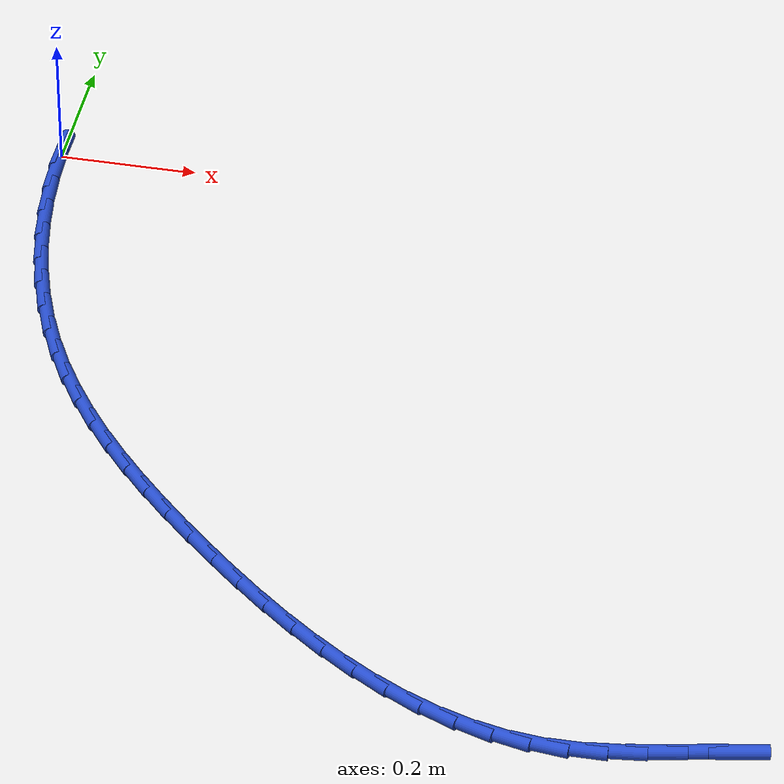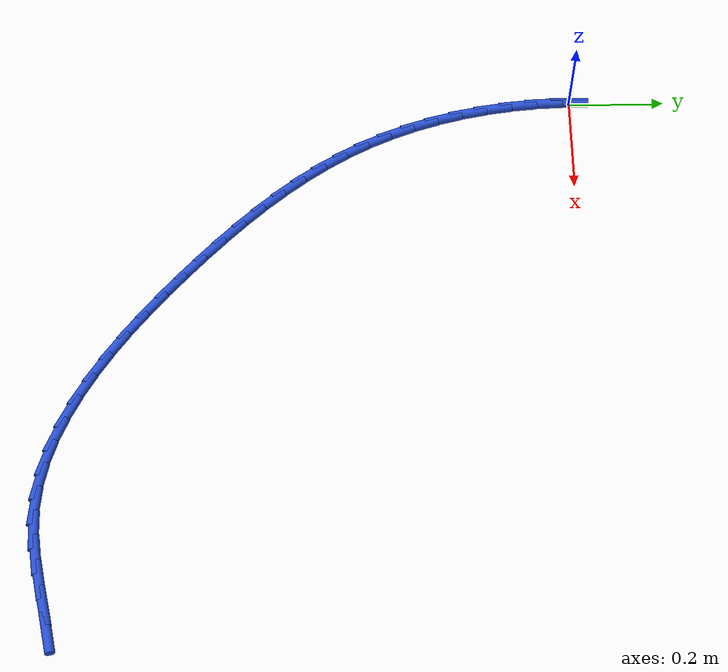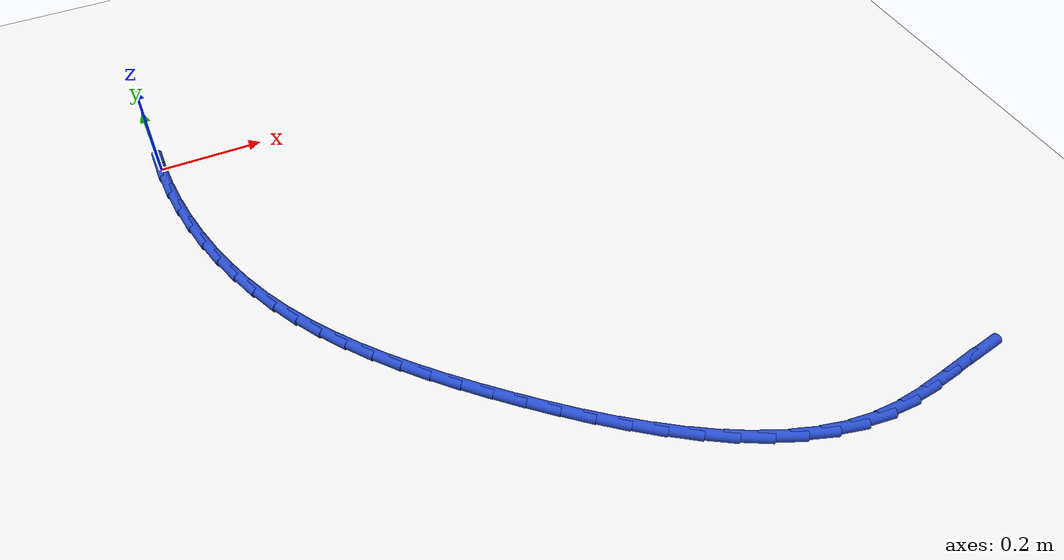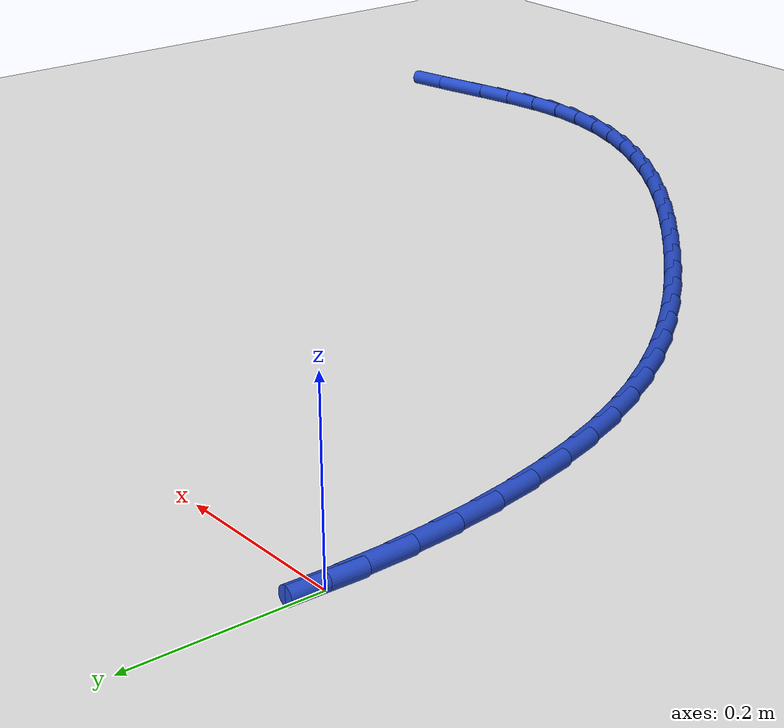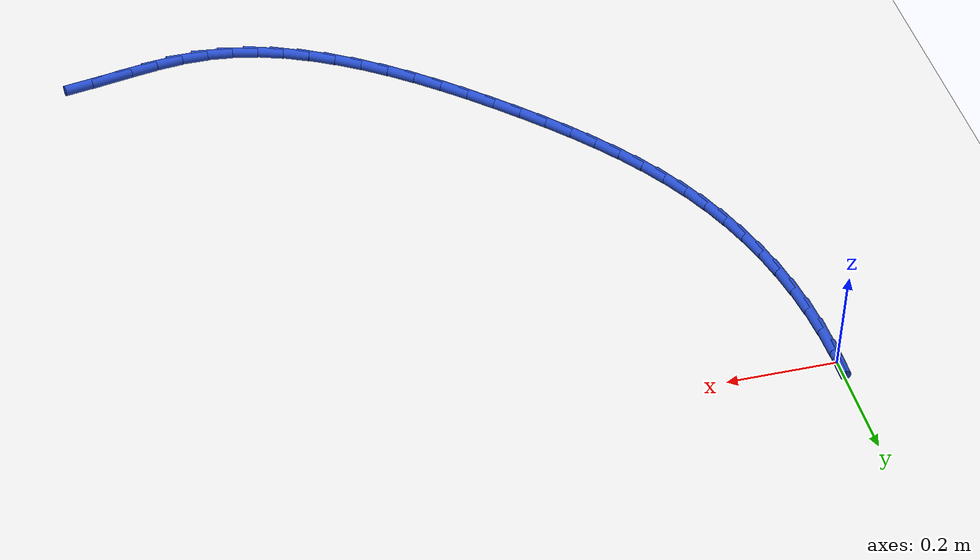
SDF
<sdf version="1.6">
 <world name="default">
  <model name="ground_plane">
   <static>1</static>
   <link name="link">
    <collision name="collision">
     <geometry><plane><normal>0 0 1</normal><size>100 100</size></plane></geometry>
     <surface><friction><ode><mu>100</mu><mu2>50</mu2></ode></friction></surface>
    </collision>
    <visual name="visual">
     <cast_shadows>0</cast_shadows>
     <geometry><plane><normal>0 0 1</normal><size>100 100</size></plane></geometry>
     <material>
      <script><uri>file://media/materials/scripts/gazebo.material</uri><name>Gazebo/WhiteGlow</name></script>
     </material>
    </visual>
   </link>
  </model>
  <model name="line">
   <link name="link_0">
    <pose>2.42861286636753e-17 1.5265566588595902e-16 0.01 0 1.57 1.5557548040835374</pose>
    <collision name="collision">
     <geometry><cylinder><radius>0.01</radius><length>0.08</length></cylinder></geometry>
    </collision>
    <visual name="visual">
     <material>
      <script><name>Gazebo/Blue</name><uri>file://media/materials/scripts/gazebo.material</uri></script>
     </material>
     <geometry><cylinder><radius>0.01</radius><length>0.08</length></cylinder></geometry>
    </visual>
   </link>
   <link name="link_107">
    <pose>1.1538798904895493 -1.0425496384109363 0.01 0 1.57 0.19039783025946605</pose>
    <collision name="collision">
     <geometry><cylinder><radius>0.01</radius><length>0.08</length></cylinder></geometry>
    </collision>
    <visual name="visual">
     <material>
      <script><name>Gazebo/Blue</name><uri>file://media/materials/scripts/gazebo.material</uri></script>
     </material>
     <geometry><cylinder><radius>0.01</radius><length>0.08</length></cylinder></geometry>
    </visual>
   </link>
   <link name="link_108">
    <pose>1.1011911335605913 -1.052704469720251 0.01 0 1.57 0.2043302206934685</pose>
    <collision name="collision">
     <geometry><cylinder><radius>0.01</radius><length>0.08</length></cylinder></geometry>
    </collision>
    <visual name="visual">
     <material>
      <script><name>Gazebo/Blue</name><uri>file://media/materials/scripts/gazebo.material</uri></script>
     </material>
     <geometry><cylinder><radius>0.01</radius><length>0.08</length></cylinder></geometry>
    </visual>
   </link>
   <link name="link_109">
    <pose>1.0497170974686552 -1.0633710316782838 0.01 0 1.57 0.1808869468744371</pose>
    <collision name="collision">
     <geometry><cylinder><radius>0.01</radius><length>0.08</length></cylinder></geometry>
    </collision>
    <visual name="visual">
     <material>
      <script><name>Gazebo/Blue</name><uri>file://media/materials/scripts/gazebo.material</uri></script>
     </material>
     <geometry><cylinder><radius>0.01</radius><length>0.08</length></cylinder></geometry>
    </visual>
   </link>
   <link name="link_110">
    <pose>0.999150323412599 -1.0726189863876652 0.01 0 1.57 0.11751423238117457</pose>
    <collision name="collision">
     <geometry><cylinder><radius>0.01</radius><length>0.08</length></cylinder></geometry>
    </collision>
    <visual name="visual">
     <material>
      <script><name>Gazebo/Blue</name><uri>file://media/materials/scripts/gazebo.material</uri></script>
     </material>
     <geometry><cylinder><radius>0.01</radius><length>0.08</length></cylinder></geometry>
    </visual>
   </link>
   <link name="link_111">
    <pose>0.9491833525912792 -1.0785179959510258 0.01 0 1.57 0.012868832274813516</pose>
    <collision name="collision">
     <geometry><cylinder><radius>0.01</radius><length>0.08</length></cylinder></geometry>
    </collision>
    <visual name="visual">
     <material>
      <script><name>Gazebo/Blue</name><uri>file://media/materials/scripts/gazebo.material</uri></script>
     </material>
     <geometry><cylinder><radius>0.01</radius><length>0.08</length></cylinder></geometry>
    </visual>
   </link>
   <link name="link_112">
    <pose>0.8995120285811607 -1.0791572431768748 0.01 0 1.57 -0.11194142066950004</pose>
    <collision name="collision">
     <geometry><cylinder><radius>0.01</radius><length>0.08</length></cylinder></geometry>
    </collision>
    <visual name="visual">
     <material>
      <script><name>Gazebo/Blue</name><uri>file://media/materials/scripts/gazebo.material</uri></script>
     </material>
     <geometry><cylinder><radius>0.01</radius><length>0.08</length></cylinder></geometry>
    </visual>
   </link>
   <link name="link_113">
    <pose>0.8499954653236678 -1.073591019396004 0.01 0 1.57 -0.226024219698549</pose>
    <collision name="collision">
     <geometry><cylinder><radius>0.01</radius><length>0.08</length></cylinder></geometry>
    </collision>
    <visual name="visual">
     <material>
      <script><name>Gazebo/Blue</name><uri>file://media/materials/scripts/gazebo.material</uri></script>
     </material>
     <geometry><cylinder><radius>0.01</radius><length>0.08</length></cylinder></geometry>
    </visual>
   </link>
   <link name="link_114">
    <pose>0.8007276035930383 -1.062261702366651 0.01 0 1.57 -0.326161695039591</pose>
    <collision name="collision">
     <geometry><cylinder><radius>0.01</radius><length>0.08</length></cylinder></geometry>
    </collision>
    <visual name="visual">
     <material>
      <script><name>Gazebo/Blue</name><uri>file://media/materials/scripts/gazebo.material</uri></script>
     </material>
     <geometry><cylinder><radius>0.01</radius><length>0.08</length></cylinder></geometry>
    </visual>
   </link>
   <link name="link_115">
    <pose>0.7518205930734316 -1.0457193046536095 0.01 0 1.57 -0.4126805203101307</pose>
    <collision name="collision">
     <geometry><cylinder><radius>0.01</radius><length>0.08</length></cylinder></geometry>
    </collision>
    <visual name="visual">
     <material>
      <script><name>Gazebo/Blue</name><uri>file://media/materials/scripts/gazebo.material</uri></script>
     </material>
     <geometry><cylinder><radius>0.01</radius><length>0.08</length></cylinder></geometry>
    </visual>
   </link>
   <link name="link_116">
    <pose>0.7033865834490076 -1.0245138388216724 0.01 0 1.57 -0.4866832821104728</pose>
    <collision name="collision">
     <geometry><cylinder><radius>0.01</radius><length>0.08</length></cylinder></geometry>
    </collision>
    <visual name="visual">
     <material>
      <script><name>Gazebo/Blue</name><uri>file://media/materials/scripts/gazebo.material</uri></script>
     </material>
     <geometry><cylinder><radius>0.01</radius><length>0.08</length></cylinder></geometry>
    </visual>
   </link>
   <link name="link_117">
    <pose>0.655537724403925 -0.9991953174356321 0.01 0 1.57 -0.5495790541301443</pose>
    <collision name="collision">
     <geometry><cylinder><radius>0.01</radius><length>0.08</length></cylinder></geometry>
    </collision>
    <visual name="visual">
     <material>
      <script><name>Gazebo/Blue</name><uri>file://media/materials/scripts/gazebo.material</uri></script>
     </material>
     <geometry><cylinder><radius>0.01</radius><length>0.08</length></cylinder></geometry>
    </visual>
   </link>
   <link name="link_118">
    <pose>0.608386165622345 -0.9703137530602822 0.01 0 1.57 -0.6027911567929287</pose>
    <collision name="collision">
     <geometry><cylinder><radius>0.01</radius><length>0.08</length></cylinder></geometry>
    </collision>
    <visual name="visual">
     <material>
      <script><name>Gazebo/Blue</name><uri>file://media/materials/scripts/gazebo.material</uri></script>
     </material>
     <geometry><cylinder><radius>0.01</radius><length>0.08</length></cylinder></geometry>
    </visual>
   </link>
   <link name="link_119">
    <pose>0.5620440567884273 -0.9384191582604163 0.01 0 1.57 -0.6476061007345547</pose>
    <collision name="collision">
     <geometry><cylinder><radius>0.01</radius><length>0.08</length></cylinder></geometry>
    </collision>
    <visual name="visual">
     <material>
      <script><name>Gazebo/Blue</name><uri>file://media/materials/scripts/gazebo.material</uri></script>
     </material>
     <geometry><cylinder><radius>0.01</radius><length>0.08</length></cylinder></geometry>
    </visual>
   </link>
   <link name="link_120">
    <pose>0.5166235475863311 -0.9040615456008265 0.01 0 1.57 -0.6851108197964323</pose>
    <collision name="collision">
     <geometry><cylinder><radius>0.01</radius><length>0.08</length></cylinder></geometry>
    </collision>
    <visual name="visual">
     <material>
      <script><name>Gazebo/Blue</name><uri>file://media/materials/scripts/gazebo.material</uri></script>
     </material>
     <geometry><cylinder><radius>0.01</radius><length>0.08</length></cylinder></geometry>
    </visual>
   </link>
   <link name="link_121">
    <pose>0.4722367877002163 -0.8677909276463065 0.01 0 1.57 -0.7161761805476167</pose>
    <collision name="collision">
     <geometry><cylinder><radius>0.01</radius><length>0.08</length></cylinder></geometry>
    </collision>
    <visual name="visual">
     <material>
      <script><name>Gazebo/Blue</name><uri>file://media/materials/scripts/gazebo.material</uri></script>
     </material>
     <geometry><cylinder><radius>0.01</radius><length>0.08</length></cylinder></geometry>
    </visual>
   </link>
   <link name="link_122">
    <pose>0.4289959268142424 -0.8301573169616486 0.01 0 1.57 -0.7414596874110615</pose>
    <collision name="collision">
     <geometry><cylinder><radius>0.01</radius><length>0.08</length></cylinder></geometry>
    </collision>
    <visual name="visual">
     <material>
      <script><name>Gazebo/Blue</name><uri>file://media/materials/scripts/gazebo.material</uri></script>
     </material>
     <geometry><cylinder><radius>0.01</radius><length>0.08</length></cylinder></geometry>
    </visual>
   </link>
   <link name="link_123">
    <pose>0.38701311461257043 -0.7917107261116473 0.01 0 1.57 -0.7621236740101198</pose>
    <collision name="collision">
     <geometry><cylinder><radius>0.01</radius><length>0.08</length></cylinder></geometry>
    </collision>
    <visual name="visual">
     <material>
      <script><name>Gazebo/Blue</name><uri>file://media/materials/scripts/gazebo.material</uri></script>
     </material>
     <geometry><cylinder><radius>0.01</radius><length>0.08</length></cylinder></geometry>
    </visual>
   </link>
   <link name="link_124">
    <pose>0.34640435809972653 -0.7529495967972397 0.01 0 1.57 -0.7847527439742054</pose>
    <collision name="collision">
     <geometry><cylinder><radius>0.01</radius><length>0.08</length></cylinder></geometry>
    </collision>
    <visual name="visual">
     <material>
      <script><name>Gazebo/Blue</name><uri>file://media/materials/scripts/gazebo.material</uri></script>
     </material>
     <geometry><cylinder><radius>0.01</radius><length>0.08</length></cylinder></geometry>
    </visual>
   </link>
   <link name="link_125">
    <pose>0.307319836989394 -0.7139154949704688 0.01 0 1.57 -0.8128559919462752</pose>
    <collision name="collision">
     <geometry><cylinder><radius>0.01</radius><length>0.08</length></cylinder></geometry>
    </collision>
    <visual name="visual">
     <material>
      <script><name>Gazebo/Blue</name><uri>file://media/materials/scripts/gazebo.material</uri></script>
     </material>
     <geometry><cylinder><radius>0.01</radius><length>0.08</length></cylinder></geometry>
    </visual>
   </link>
   <link name="link_126">
    <pose>0.2699275838011095 -0.6744113015553022 0.01 0 1.57 -0.8466340662858267</pose>
    <collision name="collision">
     <geometry><cylinder><radius>0.01</radius><length>0.08</length></cylinder></geometry>
    </collision>
    <visual name="visual">
     <material>
      <script><name>Gazebo/Blue</name><uri>file://media/materials/scripts/gazebo.material</uri></script>
     </material>
     <geometry><cylinder><radius>0.01</radius><length>0.08</length></cylinder></geometry>
    </visual>
   </link>
   <link name="link_127">
    <pose>0.23439578645802425 -0.6342378197902173 0.01 0 1.57 -0.8861863688634076</pose>
    <collision name="collision">
     <geometry><cylinder><radius>0.01</radius><length>0.08</length></cylinder></geometry>
    </collision>
    <visual name="visual">
     <material>
      <script><name>Gazebo/Blue</name><uri>file://media/materials/scripts/gazebo.material</uri></script>
     </material>
     <geometry><cylinder><radius>0.01</radius><length>0.08</length></cylinder></geometry>
    </visual>
   </link>
   <link name="link_128">
    <pose>0.20089263288328776 -0.5931958529136897 0.01 0 1.57 -0.9315018900054706</pose>
    <collision name="collision">
     <geometry><cylinder><radius>0.01</radius><length>0.08</length></cylinder></geometry>
    </collision>
    <visual name="visual">
     <material>
      <script><name>Gazebo/Blue</name><uri>file://media/materials/scripts/gazebo.material</uri></script>
     </material>
     <geometry><cylinder><radius>0.01</radius><length>0.08</length></cylinder></geometry>
    </visual>
   </link>
   <link name="link_129">
    <pose>0.1695863110000502 -0.5510862041641954 0.01 0 1.57 -0.9824168751520567</pose>
    <collision name="collision">
     <geometry><cylinder><radius>0.01</radius><length>0.08</length></cylinder></geometry>
    </collision>
    <visual name="visual">
     <material>
      <script><name>Gazebo/Blue</name><uri>file://media/materials/scripts/gazebo.material</uri></script>
     </material>
     <geometry><cylinder><radius>0.01</radius><length>0.08</length></cylinder></geometry>
    </visual>
   </link>
   <link name="link_130">
    <pose>0.14064500873146152 -0.5077096767802103 0.01 0 1.57 -1.0385738378759415</pose>
    <collision name="collision">
     <geometry><cylinder><radius>0.01</radius><length>0.08</length></cylinder></geometry>
    </collision>
    <visual name="visual">
     <material>
      <script><name>Gazebo/Blue</name><uri>file://media/materials/scripts/gazebo.material</uri></script>
     </material>
     <geometry><cylinder><radius>0.01</radius><length>0.08</length></cylinder></geometry>
    </visual>
   </link>
   <link name="link_131">
    <pose>0.1142369140006715 -0.4628670740002098 0.01 0 1.57 -1.0993331877156927</pose>
    <collision name="collision">
     <geometry><cylinder><radius>0.01</radius><length>0.08</length></cylinder></geometry>
    </collision>
    <visual name="visual">
     <material>
      <script><name>Gazebo/Blue</name><uri>file://media/materials/scripts/gazebo.material</uri></script>
     </material>
     <geometry><cylinder><radius>0.01</radius><length>0.08</length></cylinder></geometry>
    </visual>
   </link>
   <link name="link_132">
    <pose>0.0905286041063531 -0.4163626787934242 0.01 0 1.57 -1.1613859847910775</pose>
    <collision name="collision">
     <geometry><cylinder><radius>0.01</radius><length>0.08</length></cylinder></geometry>
    </collision>
    <visual name="visual">
     <material>
      <script><name>Gazebo/Blue</name><uri>file://media/materials/scripts/gazebo.material</uri></script>
     </material>
     <geometry><cylinder><radius>0.01</radius><length>0.08</length></cylinder></geometry>
    </visual>
   </link>
   <link name="link_133">
    <pose>0.06961246288802238 -0.3681610680181946 0.01 0 1.57 -1.2209810111692718</pose>
    <collision name="collision">
     <geometry><cylinder><radius>0.01</radius><length>0.08</length></cylinder></geometry>
    </collision>
    <visual name="visual">
     <material>
      <script><name>Gazebo/Blue</name><uri>file://media/materials/scripts/gazebo.material</uri></script>
     </material>
     <geometry><cylinder><radius>0.01</radius><length>0.08</length></cylinder></geometry>
    </visual>
   </link>
   <link name="link_134">
    <pose>0.05147720208953597 -0.3184508005872777 0.01 0 1.57 -1.2780941939553863</pose>
    <collision name="collision">
     <geometry><cylinder><radius>0.01</radius><length>0.08</length></cylinder></geometry>
    </collision>
    <visual name="visual">
     <material>
      <script><name>Gazebo/Blue</name><uri>file://media/materials/scripts/gazebo.material</uri></script>
     </material>
     <geometry><cylinder><radius>0.01</radius><length>0.08</length></cylinder></geometry>
    </visual>
   </link>
   <link name="link_135">
    <pose>0.03610381945883392 -0.26743710138938076 0.01 0 1.57 -1.3330090208666665</pose>
    <collision name="collision">
     <geometry><cylinder><radius>0.01</radius><length>0.08</length></cylinder></geometry>
    </collision>
    <visual name="visual">
     <material>
      <script><name>Gazebo/Blue</name><uri>file://media/materials/scripts/gazebo.material</uri></script>
     </material>
     <geometry><cylinder><radius>0.01</radius><length>0.08</length></cylinder></geometry>
    </visual>
   </link>
   <link name="link_136">
    <pose>0.023473312743856868 -0.2153251953132138 0.01 0 1.57 -1.3860277074158318</pose>
    <collision name="collision">
     <geometry><cylinder><radius>0.01</radius><length>0.08</length></cylinder></geometry>
    </collision>
    <visual name="visual">
     <material>
      <script><name>Gazebo/Blue</name><uri>file://media/materials/scripts/gazebo.material</uri></script>
     </material>
     <geometry><cylinder><radius>0.01</radius><length>0.08</length></cylinder></geometry>
    </visual>
   </link>
   <link name="link_137">
    <pose>0.013566679692544749 -0.16232030724748395 0.01 0 1.57 -1.4374627263728526</pose>
    <collision name="collision">
     <geometry><cylinder><radius>0.01</radius><length>0.08</length></cylinder></geometry>
    </collision>
    <visual name="visual">
     <material>
      <script><name>Gazebo/Blue</name><uri>file://media/materials/scripts/gazebo.material</uri></script>
     </material>
     <geometry><cylinder><radius>0.01</radius><length>0.08</length></cylinder></geometry>
    </visual>
   </link>
   <link name="link_138">
    <pose>0.006364918052837774 -0.10862766208089972 0.01 0 1.57 -1.487631367507106</pose>
    <collision name="collision">
     <geometry><cylinder><radius>0.01</radius><length>0.08</length></cylinder></geometry>
    </collision>
    <visual name="visual">
     <material>
      <script><name>Gazebo/Blue</name><uri>file://media/materials/scripts/gazebo.material</uri></script>
     </material>
     <geometry><cylinder><radius>0.01</radius><length>0.08</length></cylinder></geometry>
    </visual>
   </link>
   <link name="link_139">
    <pose>0.0018490255726761372 -0.0544524847021692 0.01 0 1.57 -1.536852689561042</pose>
    <collision name="collision">
     <geometry><cylinder><radius>0.01</radius><length>0.08</length></cylinder></geometry>
    </collision>
    <visual name="visual">
     <material>
      <script><name>Gazebo/Blue</name><uri>file://media/materials/scripts/gazebo.material</uri></script>
     </material>
     <geometry><cylinder><radius>0.01</radius><length>0.08</length></cylinder></geometry>
    </visual>
   </link>
   <link name="link_140">
    <pose>3.2959746043559335e-17 1.8041124150158794e-16 0.01 0 1.57 1.55614638137234</pose>
    <collision name="collision">
     <geometry><cylinder><radius>0.01</radius><length>0.08</length></cylinder></geometry>
    </collision>
    <visual name="visual">
     <material>
      <script><name>Gazebo/Blue</name><uri>file://media/materials/scripts/gazebo.material</uri></script>
     </material>
     <geometry><cylinder><radius>0.01</radius><length>0.08</length></cylinder></geometry>
    </visual>
   </link>
  </model>
 </world>
</sdf>
